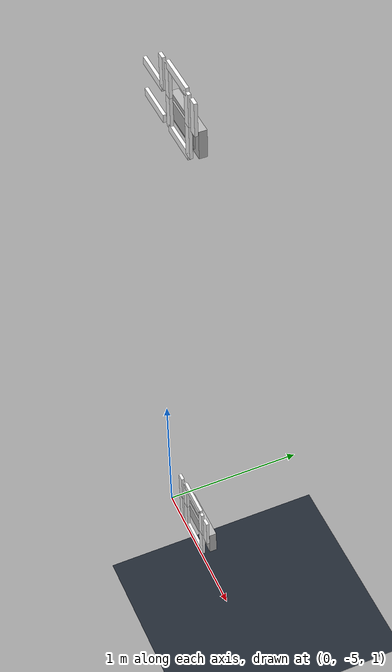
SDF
<sdf version="1.6">
 <world name="hotel_two_floor">
  <model name="ground_plane">
   <static>true</static>
   <link name="link">
    <collision name="col">
     <geometry><plane><normal>0 0 1</normal><size>100 100</size></plane></geometry>
    </collision>
    <visual name="vis">
     <geometry><plane><normal>0 0 1</normal><size>100 100</size></plane></geometry>
     <material><ambient>0.13 0.16 0.20 1</ambient><diffuse>0.13 0.16 0.20 1</diffuse></material>
    </visual>
   </link>
  </model>
  <model name="f1_sign_s3">
   <static>true</static>
   <pose>0.6500 -5.0250 1.5000 0 0 0</pose>
   <link name="link">
    <collision name="col"><geometry><box><size>0.3800 0.0500 0.1800</size></box></geometry></collision>
    <visual name="vis">
     <geometry><box><size>0.3800 0.0500 0.1800</size></box></geometry>
     <material>
      <material>
       <ambient>0.90 0.36 0.10 1</ambient>
       <diffuse>0.90 0.36 0.10 1</diffuse>
       <specular>0.10 0.10 0.10 1</specular>
      </material>
     </material>
    </visual>
   </link>
  </model>
  <model name="f1_lbl_s3">
   <static>true</static>
   <pose>0.6500 -5.0550 1.5000 0 0 0</pose>
   <link name="link">
    <visual name="vis">
     <geometry><box><size>0.2800 0.0100 0.1200</size></box></geometry>
     <material>
      <material>
       <ambient>0.97 0.97 0.97 1</ambient>
       <diffuse>0.97 0.97 0.97 1</diffuse>
       <specular>0.10 0.10 0.10 1</specular>
      </material>
     </material>
    </visual>
   </link>
  </model>
  <model name="f1_room_s_104_0_b">
   <static>true</static>
   <pose>0.4900 -5.1000 1.7550 0 0 0</pose>
   <link name="link">
    <visual name="vis">
     <geometry><box><size>0.0500 0.0200 0.2100</size></box></geometry>
     <material>
      <ambient>0.98 0.98 0.98 1</ambient>
      <diffuse>0.98 0.98 0.98 1</diffuse>
      <specular>0.20 0.20 0.20 1</specular>
     </material>
    </visual>
   </link>
  </model>
  <model name="f1_room_s_104_0_c">
   <static>true</static>
   <pose>0.4900 -5.1000 1.5450 0 0 0</pose>
   <link name="link">
    <visual name="vis">
     <geometry><box><size>0.0500 0.0200 0.2100</size></box></geometry>
     <material>
      <ambient>0.98 0.98 0.98 1</ambient>
      <diffuse>0.98 0.98 0.98 1</diffuse>
      <specular>0.20 0.20 0.20 1</specular>
     </material>
    </visual>
   </link>
  </model>
  <model name="f1_room_s_104_1_a">
   <static>true</static>
   <pose>0.7000 -5.1000 1.8600 0 0 0</pose>
   <link name="link">
    <visual name="vis">
     <geometry><box><size>0.2600 0.0200 0.0500</size></box></geometry>
     <material>
      <ambient>0.98 0.98 0.98 1</ambient>
      <diffuse>0.98 0.98 0.98 1</diffuse>
      <specular>0.20 0.20 0.20 1</specular>
     </material>
    </visual>
   </link>
  </model>
  <model name="f1_room_s_104_1_b">
   <static>true</static>
   <pose>0.8300 -5.1000 1.7550 0 0 0</pose>
   <link name="link">
    <visual name="vis">
     <geometry><box><size>0.0500 0.0200 0.2100</size></box></geometry>
     <material>
      <ambient>0.98 0.98 0.98 1</ambient>
      <diffuse>0.98 0.98 0.98 1</diffuse>
      <specular>0.20 0.20 0.20 1</specular>
     </material>
    </visual>
   </link>
  </model>
  <model name="f1_room_s_104_1_c">
   <static>true</static>
   <pose>0.8300 -5.1000 1.5450 0 0 0</pose>
   <link name="link">
    <visual name="vis">
     <geometry><box><size>0.0500 0.0200 0.2100</size></box></geometry>
     <material>
      <ambient>0.98 0.98 0.98 1</ambient>
      <diffuse>0.98 0.98 0.98 1</diffuse>
      <specular>0.20 0.20 0.20 1</specular>
     </material>
    </visual>
   </link>
  </model>
  <model name="f1_room_s_104_1_f">
   <static>true</static>
   <pose>0.5700 -5.1000 1.7550 0 0 0</pose>
   <link name="link">
    <visual name="vis">
     <geometry><box><size>0.0500 0.0200 0.2100</size></box></geometry>
     <material>
      <ambient>0.98 0.98 0.98 1</ambient>
      <diffuse>0.98 0.98 0.98 1</diffuse>
      <specular>0.20 0.20 0.20 1</specular>
     </material>
    </visual>
   </link>
  </model>
  <model name="f1_room_s_104_1_e">
   <static>true</static>
   <pose>0.5700 -5.1000 1.5450 0 0 0</pose>
   <link name="link">
    <visual name="vis">
     <geometry><box><size>0.0500 0.0200 0.2100</size></box></geometry>
     <material>
      <ambient>0.98 0.98 0.98 1</ambient>
      <diffuse>0.98 0.98 0.98 1</diffuse>
      <specular>0.20 0.20 0.20 1</specular>
     </material>
    </visual>
   </link>
  </model>
  <model name="f1_room_s_104_1_d">
   <static>true</static>
   <pose>0.7000 -5.1000 1.4400 0 0 0</pose>
   <link name="link">
    <visual name="vis">
     <geometry><box><size>0.2600 0.0200 0.0500</size></box></geometry>
     <material>
      <ambient>0.98 0.98 0.98 1</ambient>
      <diffuse>0.98 0.98 0.98 1</diffuse>
      <specular>0.20 0.20 0.20 1</specular>
     </material>
    </visual>
   </link>
  </model>
  <model name="f1_room_s_104_2_f">
   <static>true</static>
   <pose>0.9100 -5.1000 1.7550 0 0 0</pose>
   <link name="link">
    <visual name="vis">
     <geometry><box><size>0.0500 0.0200 0.2100</size></box></geometry>
     <material>
      <ambient>0.98 0.98 0.98 1</ambient>
      <diffuse>0.98 0.98 0.98 1</diffuse>
      <specular>0.20 0.20 0.20 1</specular>
     </material>
    </visual>
   </link>
  </model>
  <model name="f2_sign_s3">
   <static>true</static>
   <pose>0.6500 -5.0250 5.0000 0 0 0</pose>
   <link name="link">
    <collision name="col"><geometry><box><size>0.3800 0.0500 0.1800</size></box></geometry></collision>
    <visual name="vis">
     <geometry><box><size>0.3800 0.0500 0.1800</size></box></geometry>
     <material>
      <material>
       <ambient>0.90 0.36 0.10 1</ambient>
       <diffuse>0.90 0.36 0.10 1</diffuse>
       <specular>0.10 0.10 0.10 1</specular>
      </material>
     </material>
    </visual>
   </link>
  </model>
  <model name="f2_lbl_s3">
   <static>true</static>
   <pose>0.6500 -5.0550 5.0000 0 0 0</pose>
   <link name="link">
    <visual name="vis">
     <geometry><box><size>0.2800 0.0100 0.1200</size></box></geometry>
     <material>
      <material>
       <ambient>0.97 0.97 0.97 1</ambient>
       <diffuse>0.97 0.97 0.97 1</diffuse>
       <specular>0.10 0.10 0.10 1</specular>
      </material>
     </material>
    </visual>
   </link>
  </model>
  <model name="f2_room_s_204_0_b">
   <static>true</static>
   <pose>0.4900 -5.1000 5.2550 0 0 0</pose>
   <link name="link">
    <visual name="vis">
     <geometry><box><size>0.0500 0.0200 0.2100</size></box></geometry>
     <material>
      <ambient>0.98 0.98 0.98 1</ambient>
      <diffuse>0.98 0.98 0.98 1</diffuse>
      <specular>0.20 0.20 0.20 1</specular>
     </material>
    </visual>
   </link>
  </model>
  <model name="f2_room_s_204_0_g">
   <static>true</static>
   <pose>0.3600 -5.1000 5.1500 0 0 0</pose>
   <link name="link">
    <visual name="vis">
     <geometry><box><size>0.2600 0.0200 0.0500</size></box></geometry>
     <material>
      <ambient>0.98 0.98 0.98 1</ambient>
      <diffuse>0.98 0.98 0.98 1</diffuse>
      <specular>0.20 0.20 0.20 1</specular>
     </material>
    </visual>
   </link>
  </model>
  <model name="f2_room_s_204_0_d">
   <static>true</static>
   <pose>0.3600 -5.1000 4.9400 0 0 0</pose>
   <link name="link">
    <visual name="vis">
     <geometry><box><size>0.2600 0.0200 0.0500</size></box></geometry>
     <material>
      <ambient>0.98 0.98 0.98 1</ambient>
      <diffuse>0.98 0.98 0.98 1</diffuse>
      <specular>0.20 0.20 0.20 1</specular>
     </material>
    </visual>
   </link>
  </model>
  <model name="f2_room_s_204_1_a">
   <static>true</static>
   <pose>0.7000 -5.1000 5.3600 0 0 0</pose>
   <link name="link">
    <visual name="vis">
     <geometry><box><size>0.2600 0.0200 0.0500</size></box></geometry>
     <material>
      <ambient>0.98 0.98 0.98 1</ambient>
      <diffuse>0.98 0.98 0.98 1</diffuse>
      <specular>0.20 0.20 0.20 1</specular>
     </material>
    </visual>
   </link>
  </model>
  <model name="f2_room_s_204_1_b">
   <static>true</static>
   <pose>0.8300 -5.1000 5.2550 0 0 0</pose>
   <link name="link">
    <visual name="vis">
     <geometry><box><size>0.0500 0.0200 0.2100</size></box></geometry>
     <material>
      <ambient>0.98 0.98 0.98 1</ambient>
      <diffuse>0.98 0.98 0.98 1</diffuse>
      <specular>0.20 0.20 0.20 1</specular>
     </material>
    </visual>
   </link>
  </model>
  <model name="f2_room_s_204_1_c">
   <static>true</static>
   <pose>0.8300 -5.1000 5.0450 0 0 0</pose>
   <link name="link">
    <visual name="vis">
     <geometry><box><size>0.0500 0.0200 0.2100</size></box></geometry>
     <material>
      <ambient>0.98 0.98 0.98 1</ambient>
      <diffuse>0.98 0.98 0.98 1</diffuse>
      <specular>0.20 0.20 0.20 1</specular>
     </material>
    </visual>
   </link>
  </model>
  <model name="f2_room_s_204_1_f">
   <static>true</static>
   <pose>0.5700 -5.1000 5.2550 0 0 0</pose>
   <link name="link">
    <visual name="vis">
     <geometry><box><size>0.0500 0.0200 0.2100</size></box></geometry>
     <material>
      <ambient>0.98 0.98 0.98 1</ambient>
      <diffuse>0.98 0.98 0.98 1</diffuse>
      <specular>0.20 0.20 0.20 1</specular>
     </material>
    </visual>
   </link>
  </model>
  <model name="f2_room_s_204_1_e">
   <static>true</static>
   <pose>0.5700 -5.1000 5.0450 0 0 0</pose>
   <link name="link">
    <visual name="vis">
     <geometry><box><size>0.0500 0.0200 0.2100</size></box></geometry>
     <material>
      <ambient>0.98 0.98 0.98 1</ambient>
      <diffuse>0.98 0.98 0.98 1</diffuse>
      <specular>0.20 0.20 0.20 1</specular>
     </material>
    </visual>
   </link>
  </model>
  <model name="f2_room_s_204_1_d">
   <static>true</static>
   <pose>0.7000 -5.1000 4.9400 0 0 0</pose>
   <link name="link">
    <visual name="vis">
     <geometry><box><size>0.2600 0.0200 0.0500</size></box></geometry>
     <material>
      <ambient>0.98 0.98 0.98 1</ambient>
      <diffuse>0.98 0.98 0.98 1</diffuse>
      <specular>0.20 0.20 0.20 1</specular>
     </material>
    </visual>
   </link>
  </model>
  <model name="f2_room_s_204_2_f">
   <static>true</static>
   <pose>0.9100 -5.1000 5.2550 0 0 0</pose>
   <link name="link">
    <visual name="vis">
     <geometry><box><size>0.0500 0.0200 0.2100</size></box></geometry>
     <material>
      <ambient>0.98 0.98 0.98 1</ambient>
      <diffuse>0.98 0.98 0.98 1</diffuse>
      <specular>0.20 0.20 0.20 1</specular>
     </material>
    </visual>
   </link>
  </model>
 </world>
</sdf>
